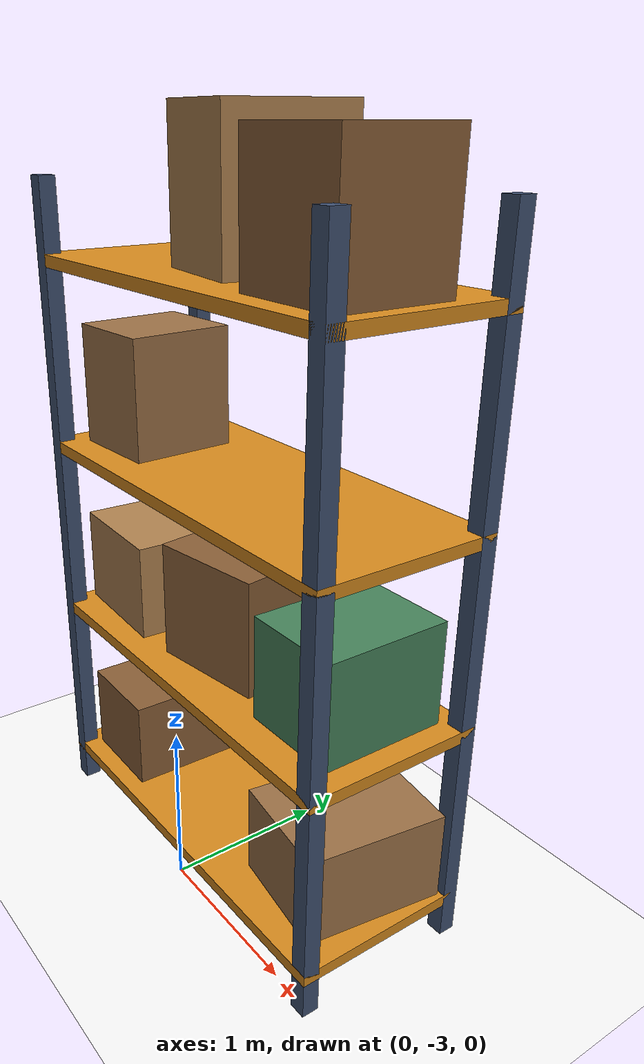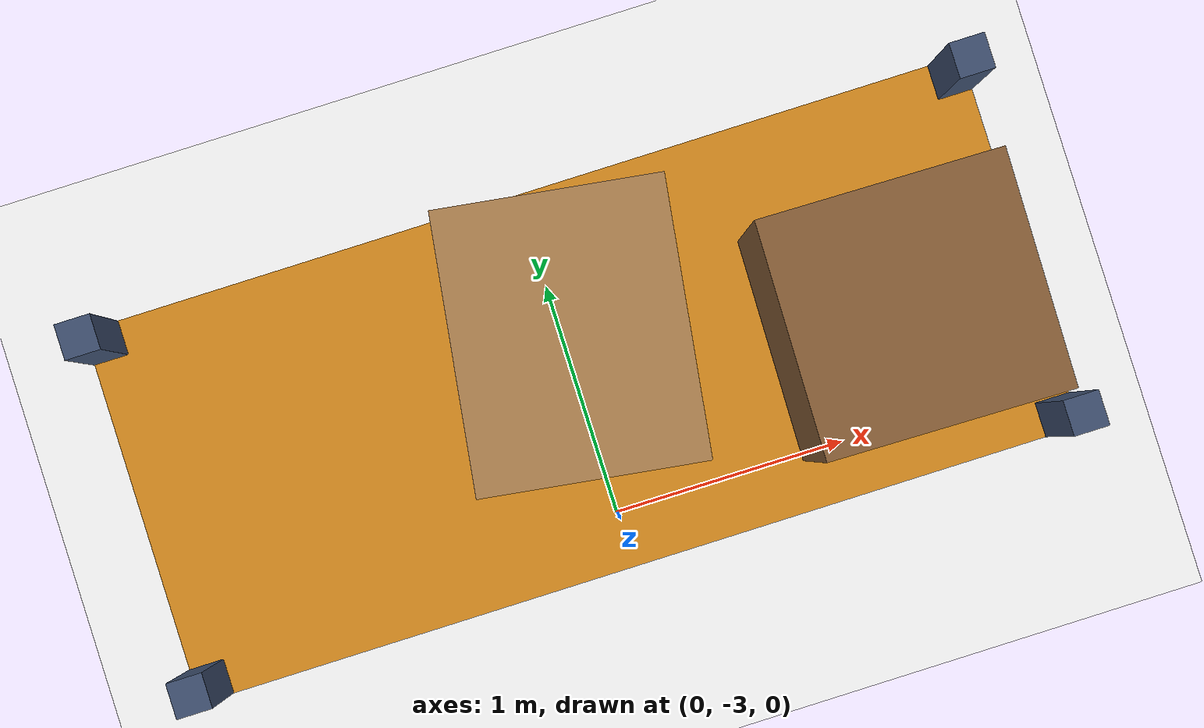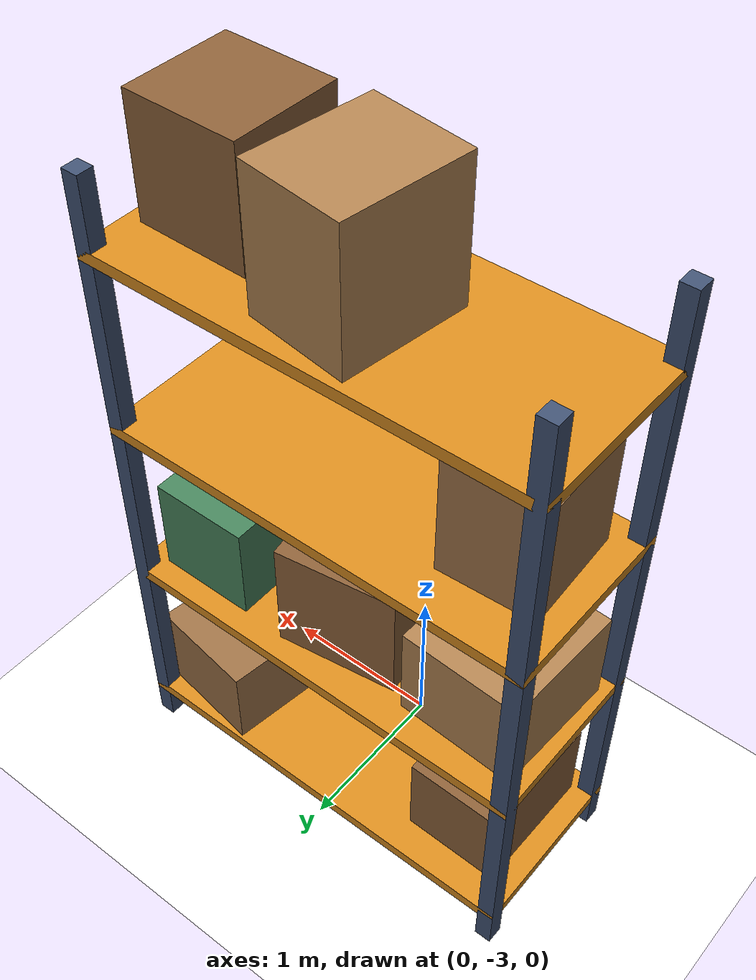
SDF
<sdf version="1.9">
 <world name="warehouse">
  <model name="ground_plane">
   <static>true</static>
   <link name="link">
    <collision name="collision">
     <geometry><plane><normal>0 0 1</normal><size>200 200</size></plane></geometry>
     <surface><friction><ode><mu>1.0</mu><mu2>1.0</mu2></ode></friction></surface>
    </collision>
    <visual name="visual">
     <geometry><plane><normal>0 0 1</normal><size>200 200</size></plane></geometry>
     <material>
      <ambient>0.5 0.5 0.5 1</ambient>
      <diffuse>1 1 1 1</diffuse>
      <pbr>
       <metal>
        <albedo_map>model://surfaces/materials/textures/floor.png</albedo_map>
        <metalness>0</metalness>
        <roughness>0.9</roughness>
       </metal>
      </pbr>
     </material>
    </visual>
   </link>
  </model>
  <model name="rack_1_2">
   <static>true</static>
   <pose>0 -2.5 0 0 0 0</pose>
   <link name="link">
    <visual name="upright_0_v">
     <pose>-1.25 -0.5 2 0 0 0</pose>
     <geometry><box><size>0.1 0.1 4</size></box></geometry>
     <material><ambient>0.125 0.16 0.225 1</ambient><diffuse>0.25 0.32 0.45 1</diffuse></material>
    </visual>
    <collision name="upright_0_c">
     <pose>-1.25 -0.5 2 0 0 0</pose>
     <geometry><box><size>0.1 0.1 4</size></box></geometry>
    </collision>
    <visual name="upright_1_v">
     <pose>-1.25 0.5 2 0 0 0</pose>
     <geometry><box><size>0.1 0.1 4</size></box></geometry>
     <material><ambient>0.125 0.16 0.225 1</ambient><diffuse>0.25 0.32 0.45 1</diffuse></material>
    </visual>
    <collision name="upright_1_c">
     <pose>-1.25 0.5 2 0 0 0</pose>
     <geometry><box><size>0.1 0.1 4</size></box></geometry>
    </collision>
    <visual name="upright_2_v">
     <pose>1.25 -0.5 2 0 0 0</pose>
     <geometry><box><size>0.1 0.1 4</size></box></geometry>
     <material><ambient>0.125 0.16 0.225 1</ambient><diffuse>0.25 0.32 0.45 1</diffuse></material>
    </visual>
    <collision name="upright_2_c">
     <pose>1.25 -0.5 2 0 0 0</pose>
     <geometry><box><size>0.1 0.1 4</size></box></geometry>
    </collision>
    <visual name="upright_3_v">
     <pose>1.25 0.5 2 0 0 0</pose>
     <geometry><box><size>0.1 0.1 4</size></box></geometry>
     <material><ambient>0.125 0.16 0.225 1</ambient><diffuse>0.25 0.32 0.45 1</diffuse></material>
    </visual>
    <collision name="upright_3_c">
     <pose>1.25 0.5 2 0 0 0</pose>
     <geometry><box><size>0.1 0.1 4</size></box></geometry>
    </collision>
    <visual name="deck_0_v">
     <pose>0 0 0.25 0 0 0</pose>
     <geometry><box><size>2.6 1.1 0.07</size></box></geometry>
     <material><ambient>0.425 0.275 0.06 1</ambient><diffuse>0.85 0.55 0.12 1</diffuse></material>
    </visual>
    <collision name="deck_0_c">
     <pose>0 0 0.25 0 0 0</pose>
     <geometry><box><size>2.6 1.1 0.07</size></box></geometry>
    </collision>
    <visual name="cargo_0_0_v">
     <pose>-0.8667 -0.039 0.5646 0 0 -0.01629</pose>
     <geometry><box><size>0.5904 0.7899 0.5592</size></box></geometry>
     <material><ambient>0.275 0.19 0.11 1</ambient><diffuse>0.55 0.38 0.22 1</diffuse></material>
    </visual>
    <collision name="cargo_0_0_c">
     <pose>-0.8667 -0.039 0.5646 0 0 -0.01629</pose>
     <geometry><box><size>0.5904 0.7899 0.5592</size></box></geometry>
    </collision>
    <visual name="cargo_0_2_v">
     <pose>0.8667 0.06074 0.5573 0 0 -0.1454</pose>
     <geometry><box><size>0.6844 0.8486 0.5447</size></box></geometry>
     <material><ambient>0.31 0.225 0.14 1</ambient><diffuse>0.62 0.45 0.28 1</diffuse></material>
    </visual>
    <collision name="cargo_0_2_c">
     <pose>0.8667 0.06074 0.5573 0 0 -0.1454</pose>
     <geometry><box><size>0.6844 0.8486 0.5447</size></box></geometry>
    </collision>
    <visual name="deck_1_v">
     <pose>0 0 1.35 0 0 0</pose>
     <geometry><box><size>2.6 1.1 0.07</size></box></geometry>
     <material><ambient>0.425 0.275 0.06 1</ambient><diffuse>0.85 0.55 0.12 1</diffuse></material>
    </visual>
    <collision name="deck_1_c">
     <pose>0 0 1.35 0 0 0</pose>
     <geometry><box><size>2.6 1.1 0.07</size></box></geometry>
    </collision>
    <visual name="cargo_1_2_v">
     <pose>0.8667 0.03166 1.688 0 0 -0.0015</pose>
     <geometry><box><size>0.5991 0.7625 0.6065</size></box></geometry>
     <material><ambient>0.14 0.26 0.18 1</ambient><diffuse>0.28 0.52 0.36 1</diffuse></material>
    </visual>
    <collision name="cargo_1_2_c">
     <pose>0.8667 0.03166 1.688 0 0 -0.0015</pose>
     <geometry><box><size>0.5991 0.7625 0.6065</size></box></geometry>
    </collision>
    <visual name="cargo_1_0_v">
     <pose>-0.8667 0.001337 1.679 0 0 -0.04719</pose>
     <geometry><box><size>0.7169 0.7719 0.5876</size></box></geometry>
     <material><ambient>0.35 0.26 0.16 1</ambient><diffuse>0.7 0.52 0.32 1</diffuse></material>
    </visual>
    <collision name="cargo_1_0_c">
     <pose>-0.8667 0.001337 1.679 0 0 -0.04719</pose>
     <geometry><box><size>0.7169 0.7719 0.5876</size></box></geometry>
    </collision>
    <visual name="cargo_1_1_v">
     <pose>0 0.0272 1.734 0 0 0.1446</pose>
     <geometry><box><size>0.7165 0.7012 0.6974</size></box></geometry>
     <material><ambient>0.275 0.19 0.11 1</ambient><diffuse>0.55 0.38 0.22 1</diffuse></material>
    </visual>
    <collision name="cargo_1_1_c">
     <pose>0 0.0272 1.734 0 0 0.1446</pose>
     <geometry><box><size>0.7165 0.7012 0.6974</size></box></geometry>
    </collision>
    <visual name="deck_2_v">
     <pose>0 0 2.45 0 0 0</pose>
     <geometry><box><size>2.6 1.1 0.07</size></box></geometry>
     <material><ambient>0.425 0.275 0.06 1</ambient><diffuse>0.85 0.55 0.12 1</diffuse></material>
    </visual>
    <collision name="deck_2_c">
     <pose>0 0 2.45 0 0 0</pose>
     <geometry><box><size>2.6 1.1 0.07</size></box></geometry>
    </collision>
    <visual name="cargo_2_0_v">
     <pose>-0.8667 -0.04888 2.84 0 0 0.04957</pose>
     <geometry><box><size>0.5641 0.6408 0.7093</size></box></geometry>
     <material><ambient>0.31 0.225 0.14 1</ambient><diffuse>0.62 0.45 0.28 1</diffuse></material>
    </visual>
    <collision name="cargo_2_0_c">
     <pose>-0.8667 -0.04888 2.84 0 0 0.04957</pose>
     <geometry><box><size>0.5641 0.6408 0.7093</size></box></geometry>
    </collision>
    <visual name="deck_3_v">
     <pose>0 0 3.55 0 0 0</pose>
     <geometry><box><size>2.6 1.1 0.07</size></box></geometry>
     <material><ambient>0.425 0.275 0.06 1</ambient><diffuse>0.85 0.55 0.12 1</diffuse></material>
    </visual>
    <collision name="deck_3_c">
     <pose>0 0 3.55 0 0 0</pose>
     <geometry><box><size>2.6 1.1 0.07</size></box></geometry>
    </collision>
    <visual name="cargo_3_2_v">
     <pose>0.8667 -0.09095 3.931 0 0 -0.01625</pose>
     <geometry><box><size>0.6698 0.6463 0.6924</size></box></geometry>
     <material><ambient>0.275 0.19 0.11 1</ambient><diffuse>0.55 0.38 0.22 1</diffuse></material>
    </visual>
    <collision name="cargo_3_2_c">
     <pose>0.8667 -0.09095 3.931 0 0 -0.01625</pose>
     <geometry><box><size>0.6698 0.6463 0.6924</size></box></geometry>
    </collision>
    <visual name="cargo_3_1_v">
     <pose>0 0.09452 3.978 0 0 -0.1397</pose>
     <geometry><box><size>0.6026 0.7368 0.7866</size></box></geometry>
     <material><ambient>0.35 0.26 0.16 1</ambient><diffuse>0.7 0.52 0.32 1</diffuse></material>
    </visual>
    <collision name="cargo_3_1_c">
     <pose>0 0.09452 3.978 0 0 -0.1397</pose>
     <geometry><box><size>0.6026 0.7368 0.7866</size></box></geometry>
    </collision>
   </link>
  </model>
 </world>
</sdf>
